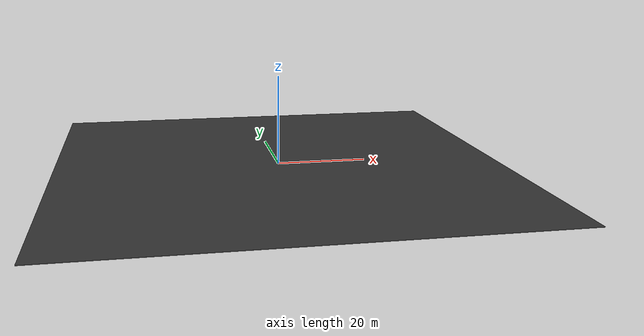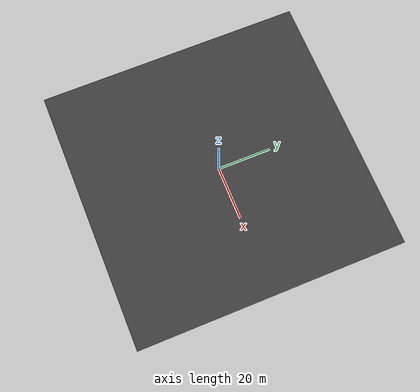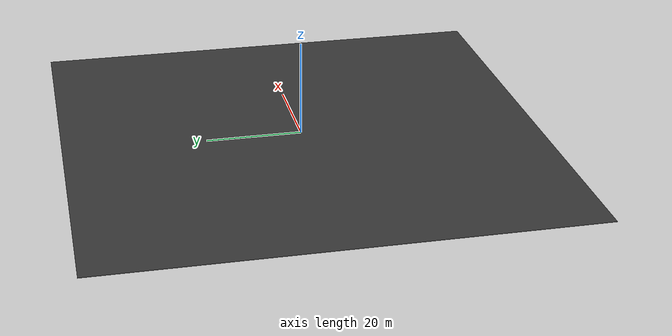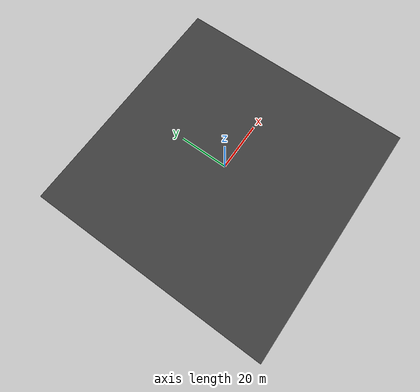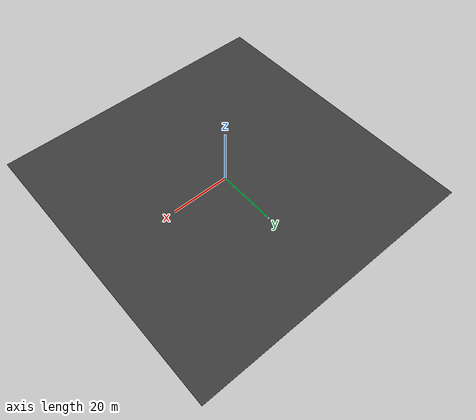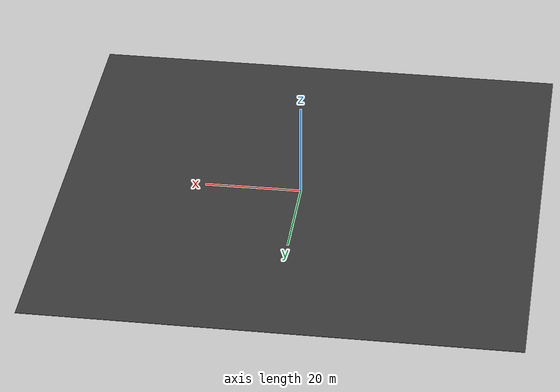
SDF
<?xml version="1.0"?>
<sdf version="1.9">
  <!-- Dedicated obstacle-free world for Stage4S open-loop dynamics tests. -->
  <world name="sanitation_test_world">
    <plugin filename="gz-sim-physics-system" name="gz::sim::systems::Physics"/>
    <plugin filename="gz-sim-user-commands-system" name="gz::sim::systems::UserCommands"/>
    <plugin filename="gz-sim-scene-broadcaster-system" name="gz::sim::systems::SceneBroadcaster"/>
    <plugin filename="gz-sim-sensors-system" name="gz::sim::systems::Sensors">
      <render_engine>ogre2</render_engine>
    </plugin>
    <plugin filename="gz-sim-navsat-system" name="gz::sim::systems::NavSat"/>
    <spherical_coordinates>
      <surface_model>EARTH_WGS84</surface_model>
      <world_frame_orientation>ENU</world_frame_orientation>
      <latitude_deg>31.2304</latitude_deg>
      <longitude_deg>121.4737</longitude_deg>
      <elevation>0</elevation>
      <heading_deg>0</heading_deg>
    </spherical_coordinates>
    <gravity>0 0 -9.81</gravity>
    <physics name="1ms" type="ignored">
      <max_step_size>0.005</max_step_size>
      <!-- Stage4T batch experiments retain the 5 ms physics step but run faster than wall time. -->
      <real_time_factor>3.0</real_time_factor>
    </physics>
    <scene>
      <ambient>0.65 0.65 0.65 1</ambient>
      <background>0.85 0.92 1.0 1</background>
      <shadows>false</shadows>
    </scene>
    <light type="directional" name="sun">
      <cast_shadows>false</cast_shadows>
      <pose>0 0 20 0 0 0</pose>
      <diffuse>0.9 0.9 0.9 1</diffuse>
      <direction>-0.4 0.2 -1.0</direction>
    </light>
    <model name="calibration_ground">
      <static>true</static>
      <pose>0 0 -0.05 0 0 0</pose>
      <link name="link">
        <collision name="collision">
          <geometry><box><size>100 100 0.10</size></box></geometry>
          <surface>
            <friction><ode><mu>0.85</mu><mu2>0.85</mu2></ode></friction>
          </surface>
        </collision>
        <visual name="visual">
          <geometry><box><size>100 100 0.10</size></box></geometry>
          <material>
            <ambient>0.18 0.18 0.18 1</ambient>
            <diffuse>0.22 0.22 0.22 1</diffuse>
          </material>
        </visual>
      </link>
    </model>
  </world>
</sdf>
